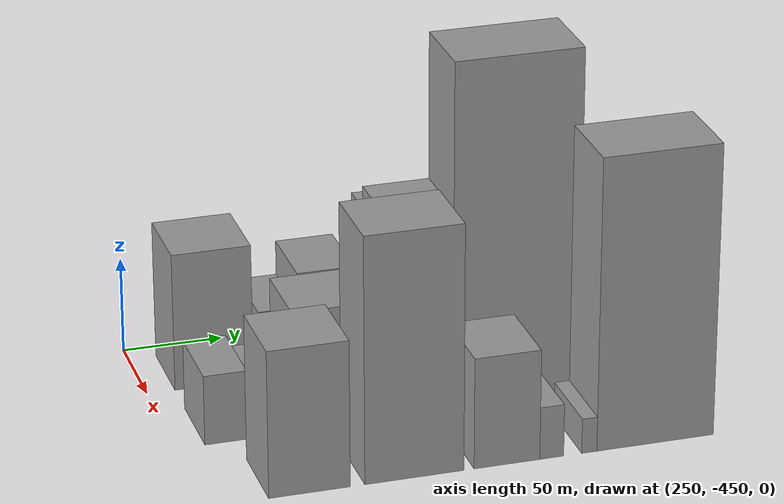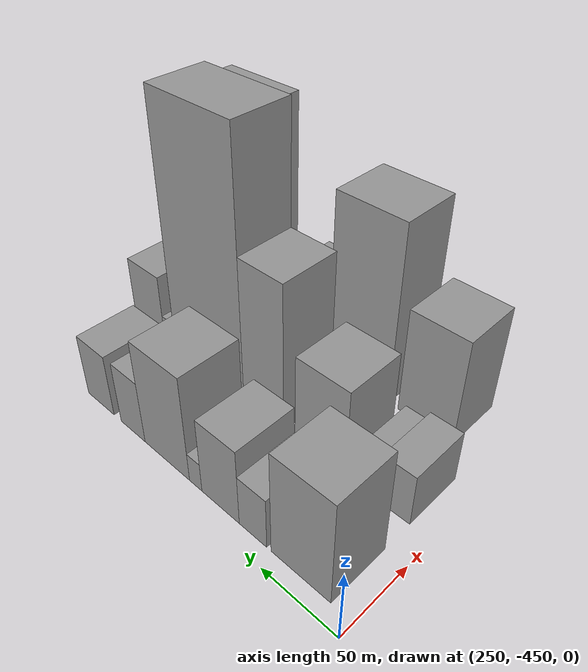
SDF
<sdf version="1.6">
 <world name="default">
  <model name="building_174">
   <static>1</static>
   <pose>280.0000 -416.4717 0 0.000000 0.000000 0.000000</pose>
   <link name="link">
    <pose>0 0 36.00 0 0 0</pose>
    <collision name="collision"><geometry><box><size>40.0000 39.3052 72.0000</size></box></geometry></collision>
    <visual name="visual">
     <cast_shadows>0</cast_shadows>
     <geometry><box><size>40.0000 39.3052 72.0000</size></box></geometry>
     <material>
      <script>
       <uri>model://grey_wall/materials/scripts</uri>
       <uri>model://grey_wall/materials/textures</uri>
       <name>vrc/grey_wall</name>
      </script>
     </material>
    </visual>
   </link>
  </model>
  <model name="building_175">
   <static>1</static>
   <pose>280.0000 -383.8929 0 0.000000 0.000000 0.000000</pose>
   <link name="link">
    <pose>0 0 18.00 0 0 0</pose>
    <collision name="collision"><geometry><box><size>40.0000 19.8525 36.0000</size></box></geometry></collision>
    <visual name="visual">
     <cast_shadows>0</cast_shadows>
     <geometry><box><size>40.0000 19.8525 36.0000</size></box></geometry>
     <material>
      <script>
       <uri>model://grey_wall/materials/scripts</uri>
       <uri>model://grey_wall/materials/textures</uri>
       <name>vrc/grey_wall</name>
      </script>
     </material>
    </visual>
   </link>
  </model>
  <model name="building_176">
   <static>1</static>
   <pose>280.0000 -359.4641 0 0.000000 0.000000 0.000000</pose>
   <link name="link">
    <pose>0 0 27.00 0 0 0</pose>
    <collision name="collision"><geometry><box><size>40.0000 29.0051 54.0000</size></box></geometry></collision>
    <visual name="visual">
     <cast_shadows>0</cast_shadows>
     <geometry><box><size>40.0000 29.0051 54.0000</size></box></geometry>
     <material>
      <script>
       <uri>model://grey_wall/materials/scripts</uri>
       <uri>model://grey_wall/materials/textures</uri>
       <name>vrc/grey_wall</name>
      </script>
     </material>
    </visual>
   </link>
  </model>
  <model name="building_177">
   <static>1</static>
   <pose>280.0000 -339.8900 0 0.000000 0.000000 0.000000</pose>
   <link name="link">
    <pose>0 0 10.50 0 0 0</pose>
    <collision name="collision"><geometry><box><size>40.0000 10.1431 21.0000</size></box></geometry></collision>
    <visual name="visual">
     <cast_shadows>0</cast_shadows>
     <geometry><box><size>40.0000 10.1431 21.0000</size></box></geometry>
     <material>
      <script>
       <uri>model://grey_wall/materials/scripts</uri>
       <uri>model://grey_wall/materials/textures</uri>
       <name>vrc/grey_wall</name>
      </script>
     </material>
    </visual>
   </link>
  </model>
  <model name="building_178">
   <static>1</static>
   <pose>280.0000 -315.3538 0 0.000000 0.000000 0.000000</pose>
   <link name="link">
    <pose>0 0 37.50 0 0 0</pose>
    <collision name="collision"><geometry><box><size>40.0000 38.9293 75.0000</size></box></geometry></collision>
    <visual name="visual">
     <cast_shadows>0</cast_shadows>
     <geometry><box><size>40.0000 38.9293 75.0000</size></box></geometry>
     <material>
      <script>
       <uri>model://grey_wall/materials/scripts</uri>
       <uri>model://grey_wall/materials/textures</uri>
       <name>vrc/grey_wall</name>
      </script>
     </material>
    </visual>
   </link>
  </model>
  <model name="building_179">
   <static>1</static>
   <pose>280.0000 -284.4941 0 0.000000 0.000000 0.000000</pose>
   <link name="link">
    <pose>0 0 22.50 0 0 0</pose>
    <collision name="collision"><geometry><box><size>40.0000 22.7901 45.0000</size></box></geometry></collision>
    <visual name="visual">
     <cast_shadows>0</cast_shadows>
     <geometry><box><size>40.0000 22.7901 45.0000</size></box></geometry>
     <material>
      <script>
       <uri>model://grey_wall/materials/scripts</uri>
       <uri>model://grey_wall/materials/textures</uri>
       <name>vrc/grey_wall</name>
      </script>
     </material>
    </visual>
   </link>
  </model>
  <model name="building_180">
   <static>1</static>
   <pose>280.0000 -253.0662 0 0.000000 0.000000 0.000000</pose>
   <link name="link">
    <pose>0 0 22.50 0 0 0</pose>
    <collision name="collision"><geometry><box><size>40.0000 26.0657 45.0000</size></box></geometry></collision>
    <visual name="visual">
     <cast_shadows>0</cast_shadows>
     <geometry><box><size>40.0000 26.0657 45.0000</size></box></geometry>
     <material>
      <script>
       <uri>model://grey_wall/materials/scripts</uri>
       <uri>model://grey_wall/materials/textures</uri>
       <name>vrc/grey_wall</name>
      </script>
     </material>
    </visual>
   </link>
  </model>
  <model name="building_228">
   <static>1</static>
   <pose>340.0000 -425.7538 0 0.000000 0.000000 0.000000</pose>
   <link name="link">
    <pose>0 0 18.00 0 0 0</pose>
    <collision name="collision"><geometry><box><size>40.0000 21.0256 36.0000</size></box></geometry></collision>
    <visual name="visual">
     <cast_shadows>0</cast_shadows>
     <geometry><box><size>40.0000 21.0256 36.0000</size></box></geometry>
     <material>
      <script>
       <uri>model://grey_wall/materials/scripts</uri>
       <uri>model://grey_wall/materials/textures</uri>
       <name>vrc/grey_wall</name>
      </script>
     </material>
    </visual>
   </link>
  </model>
  <model name="building_229">
   <static>1</static>
   <pose>340.0000 -407.6201 0 0.000000 0.000000 0.000000</pose>
   <link name="link">
    <pose>0 0 15.00 0 0 0</pose>
    <collision name="collision"><geometry><box><size>40.0000 15.2417 30.0000</size></box></geometry></collision>
    <visual name="visual">
     <cast_shadows>0</cast_shadows>
     <geometry><box><size>40.0000 15.2417 30.0000</size></box></geometry>
     <material>
      <script>
       <uri>model://grey_wall/materials/scripts</uri>
       <uri>model://grey_wall/materials/textures</uri>
       <name>vrc/grey_wall</name>
      </script>
     </material>
    </visual>
   </link>
  </model>
  <model name="building_230">
   <static>1</static>
   <pose>340.0000 -374.2308 0 0.000000 0.000000 0.000000</pose>
   <link name="link">
    <pose>0 0 31.50 0 0 0</pose>
    <collision name="collision"><geometry><box><size>40.0000 37.5370 63.0000</size></box></geometry></collision>
    <visual name="visual">
     <cast_shadows>0</cast_shadows>
     <geometry><box><size>40.0000 37.5370 63.0000</size></box></geometry>
     <material>
      <script>
       <uri>model://grey_wall/materials/scripts</uri>
       <uri>model://grey_wall/materials/textures</uri>
       <name>vrc/grey_wall</name>
      </script>
     </material>
    </visual>
   </link>
  </model>
  <model name="building_231">
   <static>1</static>
   <pose>340.0000 -329.9393 0 0.000000 0.000000 0.000000</pose>
   <link name="link">
    <pose>0 0 52.50 0 0 0</pose>
    <collision name="collision"><geometry><box><size>40.0000 33.0461 105.0000</size></box></geometry></collision>
    <visual name="visual">
     <cast_shadows>0</cast_shadows>
     <geometry><box><size>40.0000 33.0461 105.0000</size></box></geometry>
     <material>
      <script>
       <uri>model://grey_wall/materials/scripts</uri>
       <uri>model://grey_wall/materials/textures</uri>
       <name>vrc/grey_wall</name>
      </script>
     </material>
    </visual>
   </link>
  </model>
  <model name="building_232">
   <static>1</static>
   <pose>340.0000 -281.5275 0 0.000000 0.000000 0.000000</pose>
   <link name="link">
    <pose>0 0 90.00 0 0 0</pose>
    <collision name="collision"><geometry><box><size>40.0000 63.7775 180.0000</size></box></geometry></collision>
    <visual name="visual">
     <cast_shadows>0</cast_shadows>
     <geometry><box><size>40.0000 63.7775 180.0000</size></box></geometry>
     <material>
      <script>
       <uri>model://grey_wall/materials/scripts</uri>
       <uri>model://grey_wall/materials/textures</uri>
       <name>vrc/grey_wall</name>
      </script>
     </material>
    </visual>
   </link>
  </model>
  <model name="building_233">
   <static>1</static>
   <pose>340.0000 -244.1799 0 0.000000 0.000000 0.000000</pose>
   <link name="link">
    <pose>0 0 12.00 0 0 0</pose>
    <collision name="collision"><geometry><box><size>40.0000 10.9177 24.0000</size></box></geometry></collision>
    <visual name="visual">
     <cast_shadows>0</cast_shadows>
     <geometry><box><size>40.0000 10.9177 24.0000</size></box></geometry>
     <material>
      <script>
       <uri>model://grey_wall/materials/scripts</uri>
       <uri>model://grey_wall/materials/textures</uri>
       <name>vrc/grey_wall</name>
      </script>
     </material>
    </visual>
   </link>
  </model>
  <model name="building_234">
   <static>1</static>
   <pose>340.0000 -223.6947 0 0.000000 0.000000 0.000000</pose>
   <link name="link">
    <pose>0 0 27.00 0 0 0</pose>
    <collision name="collision"><geometry><box><size>40.0000 30.0527 54.0000</size></box></geometry></collision>
    <visual name="visual">
     <cast_shadows>0</cast_shadows>
     <geometry><box><size>40.0000 30.0527 54.0000</size></box></geometry>
     <material>
      <script>
       <uri>model://grey_wall/materials/scripts</uri>
       <uri>model://grey_wall/materials/textures</uri>
       <name>vrc/grey_wall</name>
      </script>
     </material>
    </visual>
   </link>
  </model>
  <model name="building_281">
   <static>1</static>
   <pose>400.0000 -401.7453 0 0.000000 0.000000 0.000000</pose>
   <link name="link">
    <pose>0 0 37.50 0 0 0</pose>
    <collision name="collision"><geometry><box><size>40.0000 38.9603 75.0000</size></box></geometry></collision>
    <visual name="visual">
     <cast_shadows>0</cast_shadows>
     <geometry><box><size>40.0000 38.9603 75.0000</size></box></geometry>
     <material>
      <script>
       <uri>model://grey_wall/materials/scripts</uri>
       <uri>model://grey_wall/materials/textures</uri>
       <name>vrc/grey_wall</name>
      </script>
     </material>
    </visual>
   </link>
  </model>
  <model name="building_282">
   <static>1</static>
   <pose>400.0000 -351.2334 0 0.000000 0.000000 0.000000</pose>
   <link name="link">
    <pose>0 0 63.00 0 0 0</pose>
    <collision name="collision"><geometry><box><size>40.0000 48.0636 126.0000</size></box></geometry></collision>
    <visual name="visual">
     <cast_shadows>0</cast_shadows>
     <geometry><box><size>40.0000 48.0636 126.0000</size></box></geometry>
     <material>
      <script>
       <uri>model://grey_wall/materials/scripts</uri>
       <uri>model://grey_wall/materials/textures</uri>
       <name>vrc/grey_wall</name>
      </script>
     </material>
    </visual>
   </link>
  </model>
  <model name="building_283">
   <static>1</static>
   <pose>400.0000 -306.0371 0 0.000000 0.000000 0.000000</pose>
   <link name="link">
    <pose>0 0 28.50 0 0 0</pose>
    <collision name="collision"><geometry><box><size>40.0000 32.3288 57.0000</size></box></geometry></collision>
    <visual name="visual">
     <cast_shadows>0</cast_shadows>
     <geometry><box><size>40.0000 32.3288 57.0000</size></box></geometry>
     <material>
      <script>
       <uri>model://grey_wall/materials/scripts</uri>
       <uri>model://grey_wall/materials/textures</uri>
       <name>vrc/grey_wall</name>
      </script>
     </material>
    </visual>
   </link>
  </model>
  <model name="building_284">
   <static>1</static>
   <pose>400.0000 -283.9801 0 0.000000 0.000000 0.000000</pose>
   <link name="link">
    <pose>0 0 13.50 0 0 0</pose>
    <collision name="collision"><geometry><box><size>40.0000 11.7852 27.0000</size></box></geometry></collision>
    <visual name="visual">
     <cast_shadows>0</cast_shadows>
     <geometry><box><size>40.0000 11.7852 27.0000</size></box></geometry>
     <material>
      <script>
       <uri>model://grey_wall/materials/scripts</uri>
       <uri>model://grey_wall/materials/textures</uri>
       <name>vrc/grey_wall</name>
      </script>
     </material>
    </visual>
   </link>
  </model>
  <model name="building_285">
   <static>1</static>
   <pose>400.0000 -265.3225 0 0.000000 0.000000 0.000000</pose>
   <link name="link">
    <pose>0 0 9.00 0 0 0</pose>
    <collision name="collision"><geometry><box><size>40.0000 7.5300 18.0000</size></box></geometry></collision>
    <visual name="visual">
     <cast_shadows>0</cast_shadows>
     <geometry><box><size>40.0000 7.5300 18.0000</size></box></geometry>
     <material>
      <script>
       <uri>model://grey_wall/materials/scripts</uri>
       <uri>model://grey_wall/materials/textures</uri>
       <name>vrc/grey_wall</name>
      </script>
     </material>
    </visual>
   </link>
  </model>
  <model name="building_286">
   <static>1</static>
   <pose>400.0000 -232.3082 0 0.000000 0.000000 0.000000</pose>
   <link name="link">
    <pose>0 0 75.00 0 0 0</pose>
    <collision name="collision"><geometry><box><size>40.0000 58.4986 150.0000</size></box></geometry></collision>
    <visual name="visual">
     <cast_shadows>0</cast_shadows>
     <geometry><box><size>40.0000 58.4986 150.0000</size></box></geometry>
     <material>
      <script>
       <uri>model://grey_wall/materials/scripts</uri>
       <uri>model://grey_wall/materials/textures</uri>
       <name>vrc/grey_wall</name>
      </script>
     </material>
    </visual>
   </link>
  </model>
 </world>
</sdf>
